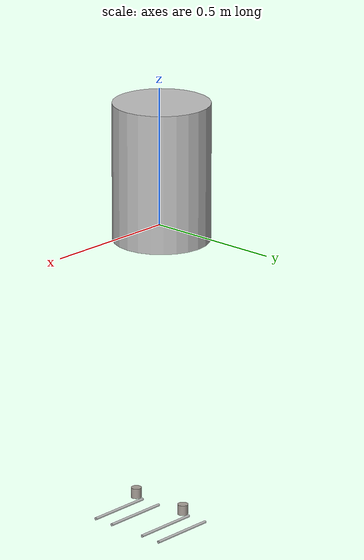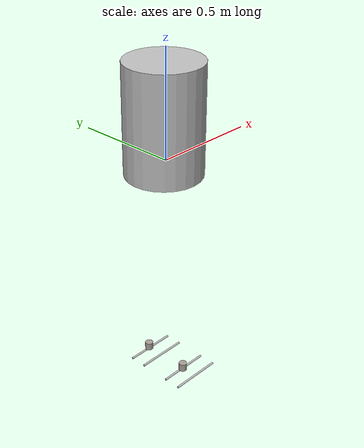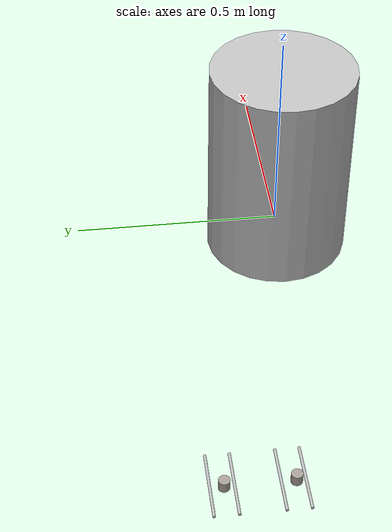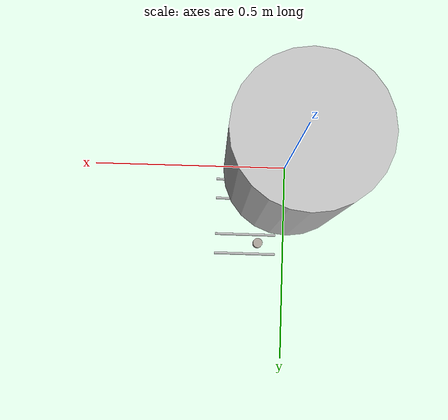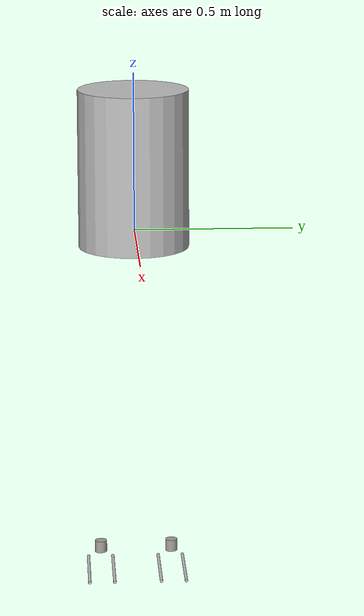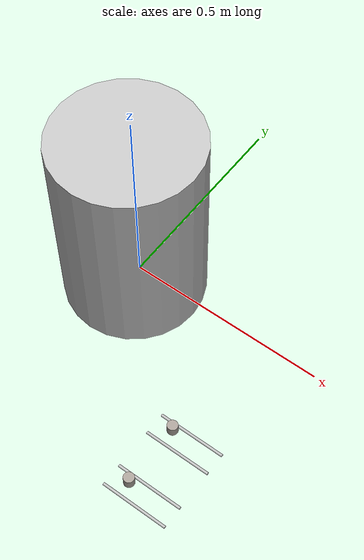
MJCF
<mujoco model="OGHR_wholeBody">
  <compiler angle="radian"/>

  <worldbody>
    <geom size="0.174519 0.250794" pos="-0.0139522 -0.00175001 0.195282" type="cylinder" rgba="0.752941 0.752941 0.752941 1"/>
    <body name="Link-head" pos="0.009 -0.00175 0.415197">
      <inertial pos="0.00675716 -0.00156849 0.0869803" quat="0.701744 0.712422 0.00287511 -0.00134849" mass="6.17377" diaginertia="0.00531355 0.005263 0.00411666"/>
      <joint name="Joint-head" pos="0 0 0" axis="0 0 1" range="-1.5708 1.5708" actuatorfrcrange="-26 26"/>
    </body>
    <body name="Link-waist-pitch" pos="0 -0.066 0">
      <inertial pos="-0.000763112 0.0406491 -2.2388e-05" quat="0.500587 0.503814 0.505293 0.490167" mass="2.51932" diaginertia="0.00468571 0.00408474 0.00308493"/>
      <joint name="Joint-waist-pitch" pos="0 0 0" axis="0 1 0" range="-0.29671 0.7854" actuatorfrcrange="-315 315"/>
      <body name="Link-waist-roll" pos="-0.065 0.0645002 0">
        <inertial pos="0.00845282 1.33729e-05 -0.0178675" quat="0.420221 0.568292 0.570969 0.417676" mass="2.80248" diaginertia="0.006529 0.00594661 0.00485849"/>
        <joint name="Joint-waist-roll" pos="0 0 0" axis="-1 0 0" range="-0.69813 0.69813" actuatorfrcrange="-315 315"/>
        <body name="Link-waist-yaw" pos="0.0685 0 -0.0980001">
          <inertial pos="-0.0929736 0.000149482 -0.0563712" quat="0.705292 0.704354 0.0563181 -0.0572447" mass="7.75175" diaginertia="0.0229678 0.0185135 0.010643"/>
          <joint name="Joint-waist-yaw" pos="0 0 0" axis="0 0 -1" range="-0.7854 0.7854" actuatorfrcrange="-121 121"/>
          <body name="Link-hip-r-roll" pos="-0.08925 -0.12 -0.069">
            <inertial pos="0.0763902 3.03512e-05 0.0143062" quat="0.00119945 0.714396 -0.00126727 0.69974" mass="1.80239" diaginertia="0.00272605 0.00169536 0.00125115"/>
            <joint name="Joint-hip-r-roll" pos="0 0 0" axis="1 0 0" range="-0.17453 0.43633" actuatorfrcrange="-320 320"/>
            <body name="Link-hip-r-yaw" pos="0.084 0 -0.0085">
              <inertial pos="1.96935e-08 0.00792742 -0.0418047" quat="0.946912 0.321492 0 0" mass="0.454709" diaginertia="0.000973165 0.000904719 0.000402039"/>
              <joint name="Joint-hip-r-yaw" pos="0 0 0" axis="0 0 1" range="-0.69813 0.69813" actuatorfrcrange="-160 160"/>
              <body name="Link-hip-r-pitch" pos="0 0.042 -0.0915">
                <inertial pos="0.00082061 -0.0604024 -0.109517" quat="0.708092 -0.0083477 -0.000601604 0.706071" mass="7.95221" diaginertia="0.0594962 0.0503949 0.0130436"/>
                <joint name="Joint-hip-r-pitch" pos="0 0 0" axis="0 -1 0" range="-0.7854 1.8326" actuatorfrcrange="-396 396"/>
                <body name="Link-knee-r-pitch" pos="0 -0.03675 -0.4">
                  <inertial pos="0.000639236 9.62808e-05 -0.15349" quat="0.70769 -0.0011083 0.00395068 0.706511" mass="3.11551" diaginertia="0.0198799 0.0186295 0.00190828"/>
                  <joint name="Joint-knee-r-pitch" pos="0 0 0" axis="0 -1 0" range="-2.35619 0.08727" actuatorfrcrange="-396 396"/>
                  <body name="Link-ankel-r-pitch" pos="0 0 -0.387">
                    <inertial pos="0 0 0" mass="0.106605" diaginertia="1.57904e-05 1.57904e-05 1.31288e-05"/>
                    <joint name="Joint-ankel-r-pitch" pos="0 0 0" axis="0 -1 0" range="-0.43633 0.61087" actuatorfrcrange="-58.5 58.5"/>
                    <geom size="0.0192257 0.019001" pos="-4.38146e-06 -4.34282e-06 4.45046e-10" quat="1 -4.90973e-05 2.12538e-06 4.90973e-05" type="cylinder" rgba="0.65098 0.619608 0.588235 1"/>
                    <body name="Link-ankel-r-roll">
                      <inertial pos="0.0250704 1.34105e-06 -0.0402505" quat="4.9772e-05 0.735975 -1.8251e-05 0.677009" mass="0.961268" diaginertia="0.00487628 0.0044402 0.000704242"/>
                      <joint name="Joint-ankel-r-roll" pos="0 0 0" axis="1 0 0" range="-0.43633 0.43633" actuatorfrcrange="-58.5 58.5"/>
                      <geom size="0.005 0.125" pos="0.0485 -0.04 -0.063" quat="0.707105 0 0.707108 0" type="cylinder" rgba="0.752941 0.752941 0.752941 1"/>
                      <geom size="0.005 0.125" pos="0.0485 0.04 -0.063" quat="0.707105 0 0.707108 0" type="cylinder" rgba="0.752941 0.752941 0.752941 1"/>
                    </body>
                  </body>
                </body>
              </body>
            </body>
          </body>
          <body name="Link-hip-l-roll" pos="-0.08925 0.12 -0.069">
            <inertial pos="0.0763902 3.03513e-05 0.0143062" quat="0.00119945 0.714396 -0.00126728 0.69974" mass="1.80239" diaginertia="0.00272605 0.00169536 0.00125115"/>
            <joint name="Joint-hip-l-roll" pos="0 0 0" axis="1 0 0" range="-0.17453 0.43633" actuatorfrcrange="-320 320"/>
            <body name="Link-hip-l-yaw" pos="0.084 0 -0.0085">
              <inertial pos="-1.96942e-08 -0.00792742 -0.0418047" quat="0.946912 -0.321492 0 0" mass="0.454709" diaginertia="0.000973165 0.000904719 0.000402039"/>
              <joint name="Joint-hip-l-yaw" pos="0 0 0" axis="0 0 1" range="-0.69813 0.69813" actuatorfrcrange="-160 160"/>
              <body name="Link-hip-l-pitch" pos="0 -0.042 -0.0915">
                <inertial pos="0.00105388 0.0604023 -0.109523" quat="0.706427 -0.000327805 -0.00807602 0.70774" mass="7.95222" diaginertia="0.0594963 0.0503975 0.0130413"/>
                <joint name="Joint-hip-l-pitch" pos="0 0 0" axis="0 -1 0" range="-0.7854 1.8326" actuatorfrcrange="-396 396"/>
                <body name="Link-knee-l-pitch" pos="0 0.03675 -0.4">
                  <inertial pos="0.000859577 -9.62775e-05 -0.15332" quat="0.706564 0.0041656 -0.000830509 0.707636" mass="3.11551" diaginertia="0.0198798 0.0186225 0.00191536"/>
                  <joint name="Joint-knee-l-pitch" pos="0 0 0" axis="0 -1 0" range="-2.35619 0.08727" actuatorfrcrange="-396 396"/>
                  <body name="Link-ankel-l-pitch" pos="0 0 -0.387">
                    <inertial pos="0 0 0" mass="0.106605" diaginertia="1.57904e-05 1.57904e-05 1.31288e-05"/>
                    <joint name="Joint-ankel-l-pitch" pos="0 0 0" axis="0 -1 0" range="-0.43644 0.61087" actuatorfrcrange="-58.5 58.5"/>
                    <geom size="0.0192257 0.019001" pos="4.38146e-06 4.34282e-06 4.45046e-10" quat="1 4.90973e-05 -2.12538e-06 4.90973e-05" type="cylinder" rgba="0.65098 0.619608 0.588235 1"/>
                    <body name="Link-ankel-l-roll">
                      <inertial pos="0.0250707 1.34004e-06 -0.0402494" quat="6.46646e-05 0.735975 -1.23541e-06 0.677008" mass="0.961268" diaginertia="0.00487628 0.0044402 0.000704241"/>
                      <joint name="Joint-ankel-l-roll" pos="0 0 0" axis="1 0 0" range="-0.43633 0.43633" actuatorfrcrange="-58.5 58.5"/>
                      <geom size="0.005 0.125" pos="0.0485 -0.04 -0.063" quat="0.707105 0 0.707108 0" type="cylinder" rgba="0.752941 0.752941 0.752941 1"/>
                      <geom size="0.005 0.125" pos="0.0485 0.04 -0.063" quat="0.707105 0 0.707108 0" type="cylinder" rgba="0.752941 0.752941 0.752941 1"/>
                    </body>
                  </body>
                </body>
              </body>
            </body>
          </body>
        </body>
      </body>
    </body>
    <body name="Link-arm-l-01" pos="0.004 0.15985 0.3922">
      <inertial pos="-0.00306104 0.0383761 -1.81718e-06" quat="-0.00469068 0.707099 0.00404108 0.707087" mass="0.78" diaginertia="0.000900041 0.00085998 0.000598217"/>
      <joint name="Joint-arm-l-01" pos="0 0 0" axis="0 1 0" range="-2.96706 2.96706" actuatorfrcrange="-80 80" damping="2"/>
      <body name="Link-arm-l-02" pos="-0.0416 0.041 0">
        <inertial pos="0.0416 0.0674307 0" quat="0.5 0.5 -0.5 0.5" mass="0.985" diaginertia="0.00226269 0.00173099 0.00115402"/>
        <joint name="Joint-arm-l-02" pos="0 0 0" axis="-1 0 0" range="-1.8326 1.8326" actuatorfrcrange="-80 80" damping="2"/>
        <body name="Link-arm-l-03" pos="0.0416 0.1226 0">
          <inertial pos="0.00141358 0.164663 0.0207579" quat="0.443733 0.531498 -0.560481 0.454392" mass="0.959" diaginertia="0.00210134 0.00206459 0.000754802"/>
          <joint name="Joint-arm-l-03" pos="0 0 0" axis="0 1 0" range="-2.96706 2.96706" actuatorfrcrange="-48 48" damping="2"/>
          <body name="Link-arm-l-04" pos="-0.0353 0.1774 0.024">
            <inertial pos="0.038727 0.0607672 -0.0210032" quat="0.467371 0.52344 -0.327692 0.632608" mass="0.6" diaginertia="0.00109257 0.000712419 0.000645098"/>
            <joint name="Joint-arm-l-04" pos="0 0 0" axis="1 0 0" range="0 2.96706" actuatorfrcrange="-48 48" damping="2"/>
            <body name="Link-arm-l-05" pos="0.0353 0.1035 -0.024">
              <inertial pos="-3.27118e-05 0.0686581 -0.000111778" quat="0.7078 0.706411 -0.00120729 0.0014061" mass="0.689758" diaginertia="0.00235883 0.00215128 0.000352535"/>
              <joint name="Joint-arm-l-05" pos="0 0 0" axis="0 1 0" range="-2.96706 2.96706" actuatorfrcrange="-12.4 12.4" damping="2"/>
              <body name="Link-arm-l-06" pos="0.0262 0.1965 0">
                <inertial pos="-0.0257777 8.95877e-07 0.00166373" quat="0.707081 -0.00185128 -0.00188402 0.707128" mass="0.28" diaginertia="0.000156927 0.000145598 0.000104981"/>
                <joint name="Joint-arm-l-06" pos="0 0 0" axis="-1 0 0" range="-1.8326 1.8326" actuatorfrcrange="-12.4 12.4" damping="2"/>
                <body name="Link-arm-l-07" pos="-0.0262 0 0.0318">
                  <inertial pos="0.0077671 0.156741 -0.0352773" quat="0.561019 0.548973 -0.435112 0.441094" mass="0.593416" diaginertia="0.00226945 0.0018047 0.00068408"/>
                  <joint name="Joint-arm-l-07" pos="0 0 0" axis="0 0 1" range="-1.0472 1.0472" actuatorfrcrange="-12.4 12.4" damping="2"/>
                </body>
              </body>
            </body>
          </body>
        </body>
      </body>
    </body>
    <body name="Link-arm-r-01" pos="0.004 -0.16335 0.392197">
      <inertial pos="0.00306104 -0.0383761 -1.81718e-06" quat="-0.00404108 0.707087 0.00469068 0.707099" mass="0.78" diaginertia="0.000900041 0.00085998 0.000598217"/>
      <joint name="Joint-arm-r-01" pos="0 0 0" axis="0 -1 0" range="-2.96706 2.96706" actuatorfrcrange="-80 80" damping="2"/>
      <body name="Link-arm-r-02" pos="-0.0438 -0.041 0">
        <inertial pos="0.0438 -0.0674307 0" quat="0.5 0.5 -0.5 0.5" mass="0.985" diaginertia="0.00226269 0.00173099 0.00115402"/>
        <joint name="Joint-arm-r-02" pos="0 0 0" axis="-1 0 0" range="-1.8326 1.8326" actuatorfrcrange="-80 80" damping="2"/>
        <body name="Link-arm-r-03" pos="0.0438 -0.1226 0">
          <inertial pos="-0.00141358 -0.164663 0.0207579" quat="0.560481 0.454392 -0.443733 0.531498" mass="0.959" diaginertia="0.00210134 0.00206459 0.000754802"/>
          <joint name="Joint-arm-r-03" pos="0 0 0" axis="0 -1 0" range="-2.96706 2.96706" actuatorfrcrange="-48 48" damping="2"/>
          <body name="Link-arm-r-04" pos="-0.0425 -0.1774 0.024">
            <inertial pos="0.039073 -0.0607672 -0.0210032" quat="0.327692 0.632608 -0.467371 0.52344" mass="0.6" diaginertia="0.00109257 0.000712419 0.000645098"/>
            <joint name="Joint-arm-r-04" pos="0 0 0" axis="-1 0 0" range="0 2.96706" actuatorfrcrange="-48 48" damping="2"/>
            <body name="Link-arm-r-05" pos="0.0425 -0.1035 -0.024">
              <inertial pos="3.27118e-05 -0.0686581 -0.000111778" quat="0.706411 0.7078 0.0014061 -0.00120729" mass="0.689758" diaginertia="0.00235883 0.00215128 0.000352535"/>
              <joint name="Joint-arm-r-05" pos="0 0 0" axis="0 -1 0" range="-2.96706 2.96706" actuatorfrcrange="-12.4 12.4" damping="2"/>
              <body name="Link-arm-r-06" pos="-0.0265 -0.1965 0">
                <inertial pos="0.0260777 -8.95882e-07 0.00166373" quat="0.707081 0.00185128 0.00188402 0.707128" mass="0.28" diaginertia="0.000156927 0.000145598 0.000104981"/>
                <joint name="Joint-arm-r-06" pos="0 0 0" axis="1 0 0" range="-1.8326 1.8326" actuatorfrcrange="-12.4 12.4" damping="2"/>
                <body name="Link-arm-r-07" pos="0.0265 0 0.0318">
                  <inertial pos="0.0077674 -0.156754 -0.0352738" quat="0.549017 0.560992 -0.441113 0.435073" mass="0.593523" diaginertia="0.00226997 0.00180519 0.000684114"/>
                  <joint name="Joint-arm-r-07" pos="0 0 0" axis="0 0 1" range="-1.0472 1.0472" actuatorfrcrange="-12.4 12.4" damping="2"/>
                </body>
              </body>
            </body>
          </body>
        </body>
      </body>
    </body>
  </worldbody>
</mujoco>
